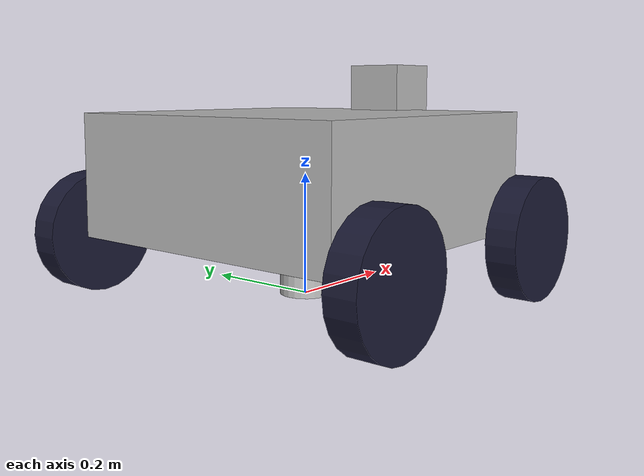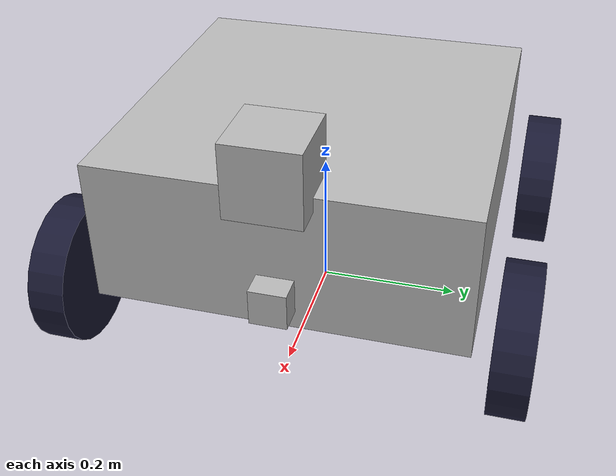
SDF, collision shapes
<?xml version='1.0'?>
<sdf version='1.4'>
    <model name="atom">
        <static>false</static>

        <!-- Make Chassis of Bot -->
        <link name="chassis">
            <pose>0 0 0.2 0 0 0</pose>
            <inertial>
                <mass>15.0</mass>
                <inertia> <!-- inertias are tricky to compute -->
                    <!-- http://gazebosim.org/tutorials?tut=inertia&cat=build_robot -->
                    <ixx>1.535</ixx>       <!-- for a box: ixx = 0.083 * mass * (y*y + z*z) -->
                    <ixy>0.0</ixy>         <!-- for a box: ixy = 0 -->
                    <ixz>0.0</ixz>         <!-- for a box: ixz = 0 -->
                    <iyy>1.535</iyy>       <!-- for a box: iyy = 0.083 * mass * (x*x + z*z) -->
                    <iyz>0.0</iyz>         <!-- for a box: iyz = 0 -->
                    <izz>1.745</izz>       <!-- for a box: izz = 0.083 * mass * (x*x + y*y) -->
                </inertia>
            </inertial>
            <collision name="collision">
                <geometry>
                    <box>
                        <size> 0.5 0.5 0.2 </size>
                    </box>
                </geometry>
            </collision>

            <visual name="visual">
                <geometry>
                    <box>
                        <size> 0.5 0.5 0.2 </size>
                    </box>
                </geometry>

                <material>
                    <script>
                        <uri>model://atom/materials/scripts/repeated.material</uri>
                        <name>Atom</name>
                    </script>
                </material>

            </visual>

        </link>

        <!-- Right Wheel Back -->
        <link name="right_wheel_back">
            <pose> -0.2 0.3 0.1 0 1.5707 1.5707</pose>
            <inertial>
                <mass>5.0</mass>
                <inertia> <!-- inertias are tricky to compute -->
                    <!-- http://gazebosim.org/tutorials?tut=inertia&cat=build_robot -->
                    <ixx>0.1</ixx>
                    <ixy>0.0</ixy>
                    <ixz>0.0</ixz>
                    <iyy>0.1</iyy>
                    <iyz>0.0</iyz>
                    <izz>0.1</izz>
                </inertia>
            </inertial>
            <visual name="visual">
                <geometry>
                    <cylinder>
                        <radius> 0.1 </radius>
                        <length>0.05</length>
                    </cylinder>
                </geometry>
                <material> <!-- Wheel material -->
                    <ambient>0.1 0.1 0.1 1</ambient>
                    <diffuse>0.1 0.1 0.2 1</diffuse>
                    <specular>0 0 0 0</specular>
                    <emissive>0 0 0 1</emissive>
                </material> <!-- End wheel material -->
            </visual>
            <collision name="collision">
                <geometry>
                    <cylinder>
                        <radius> 0.1 </radius>
                        <length>0.05</length>
                    </cylinder>
                </geometry>
            </collision>

        </link>

        <!-- Right Wheel Front -->
        <link name="right_wheel_front">
            <pose> 0.2 0.3 0.1 0 1.5707 1.5707</pose>
            <inertial>
                <mass>5.0</mass>
                <inertia> <!-- inertias are tricky to compute -->
                    <!-- http://gazebosim.org/tutorials?tut=inertia&cat=build_robot -->
                    <ixx>0.1</ixx>
                    <ixy>0.0</ixy>
                    <ixz>0.0</ixz>
                    <iyy>0.1</iyy>
                    <iyz>0.0</iyz>
                    <izz>0.1</izz>
                </inertia>
            </inertial>
            <visual name="visual">
                <geometry>
                    <cylinder>
                        <radius> 0.1 </radius>
                        <length>0.05</length>
                    </cylinder>
                </geometry>
                <material> <!-- Wheel material -->
                    <ambient>0.1 0.1 0.1 1</ambient>
                    <diffuse>0.1 0.1 0.2 1</diffuse>
                    <specular>0 0 0 0</specular>
                    <emissive>0 0 0 1</emissive>
                </material> <!-- End wheel material -->
            </visual>
            <collision name="collision">
                <geometry>
                    <cylinder>
                        <radius> 0.1 </radius>
                        <length>0.05</length>
                    </cylinder>
                </geometry>
            </collision>
        </link>

        <!-- Left Wheel Back -->
        <link name="left_wheel_back">
            <pose> -0.2 -0.3 0.1 0 1.5707 1.5707</pose>
            <inertial>
                <mass>5.0</mass>
                <inertia> <!-- inertias are tricky to compute -->
                    <!-- http://gazebosim.org/tutorials?tut=inertia&cat=build_robot -->
                    <ixx>0.1</ixx>
                    <ixy>0.0</ixy>
                    <ixz>0.0</ixz>
                    <iyy>0.1</iyy>
                    <iyz>0.0</iyz>
                    <izz>0.1</izz>
                </inertia>
            </inertial>
            <visual name="visual">
                <geometry>
                    <cylinder>
                        <radius> 0.1 </radius>
                        <length>0.05</length>
                    </cylinder>
                </geometry>
                <material> <!-- Wheel material -->
                    <ambient>0.1 0.1 0.1 1</ambient>
                    <diffuse>0.1 0.1 0.2 1</diffuse>
                    <specular>0 0 0 0</specular>
                    <emissive>0 0 0 1</emissive>
                </material> <!-- End wheel material -->
            </visual>
            <collision name="collision">
                <geometry>
                    <cylinder>
                        <radius> 0.1 </radius>
                        <length>0.05</length>
                    </cylinder>
                </geometry>
            </collision>
        </link>

        <!-- Left Wheel Front -->
        <link name="left_wheel_front">
            <pose> 0.2 -0.3 0.1 0 1.5707 1.5707</pose>
            <inertial>
                <mass>5.0</mass>
                <inertia> <!-- inertias are tricky to compute -->
                    <!-- http://gazebosim.org/tutorials?tut=inertia&cat=build_robot -->
                    <ixx>0.1</ixx>
                    <ixy>0.0</ixy>
                    <ixz>0.0</ixz>
                    <iyy>0.1</iyy>
                    <iyz>0.0</iyz>
                    <izz>0.1</izz>
                </inertia>
            </inertial>
            <visual name="visual">
                <geometry>
                    <cylinder>
                        <radius> 0.1 </radius>
                        <length>0.05</length>
                    </cylinder>
                </geometry>
                <material> <!-- Wheel material -->
                    <ambient>0.1 0.1 0.1 1</ambient>
                    <diffuse>0.1 0.1 0.2 1</diffuse>
                    <specular>0 0 0 0</specular>
                    <emissive>0 0 0 1</emissive>
                </material> <!-- End wheel material -->
            </visual>
            <collision name="collision">
                <geometry>
                    <cylinder>
                        <radius> 0.1 </radius>
                        <length>0.05</length>
                    </cylinder>
                </geometry>
            </collision>
        </link>

        <!-- Define Joints -->
        <!-- Right Wheel Joint Back-->
        <joint type="revolute" name="right_wheel_hinge_back">
            <pose>0 0 0.03 0 0 0</pose>
            <child>right_wheel_back</child>
            <parent>chassis</parent>
            <axis>
                <xyz>0 1 0</xyz>
            </axis>
        </joint>

        <!-- Right Wheel Joint Front-->
        <joint type="revolute" name="right_wheel_hinge_front">
            <pose>0 0 0.03 0 0 0</pose>
            <child>right_wheel_front</child>
            <parent>chassis</parent>
            <axis>
                <xyz>0 1 0</xyz>
            </axis>
        </joint>

        <!-- Left Wheel Joint Back-->
        <joint type="revolute" name="left_wheel_hinge_back">
            <pose>0 0 -0.03 0 0 0</pose>
            <child>left_wheel_back</child>
            <parent>chassis</parent>
            <axis>
                <xyz>0 1 0</xyz>
            </axis>
        </joint>

        <!-- Left Wheel Joint front-->
        <joint type="revolute" name="left_wheel_hinge_front">
            <pose>0 0 -0.03 0 0 0</pose>
            <child>left_wheel_front</child>
            <parent>chassis</parent>
            <axis>
                <xyz>0 1 0</xyz>
            </axis>
        </joint>

        <!-- Camera -->
        <link name="camera_link">
            <pose>0.26 0 0.15 0 0 0</pose>

            <visual name="visual">
                <geometry>
                    <box>
                        <size>0.05 0.05 0.05</size>
                    </box>
                </geometry>
            </visual>

            <collision name="collision">
                <geometry>
                    <box>
                        <size>0.05 0.05 0.05</size>
                    </box>
                </geometry>
            </collision>

            <sensor type="camera" name="camera1">
                <update_rate>30.0</update_rate>
                <camera name="head">
                    <horizontal_fov>1.3962634</horizontal_fov>
                    <image>
                        <width>800</width>
                        <height>800</height>
                        <format>R8G8B8</format>
                    </image>
                    <clip>
                        <near>0.02</near>
                        <far>300</far>
                    </clip>
                </camera>
                <always_on>1</always_on>
                <visualize>1</visualize>
                <plugin name="camera_controller" filename="libgazebo_ros_camera.so">
                    <alwaysOn>true</alwaysOn>
                    <updateRate>0.0</updateRate>
                    <cameraName>atom/camera</cameraName>
                    <imageTopicName>rgb/image_raw</imageTopicName>
                    <cameraInfoTopicName>rgb/camera_info</cameraInfoTopicName>
                    <frameName>camera_link</frameName>
                    <hackBaseline>0.07</hackBaseline>
                    <distortionK1>0.0</distortionK1>
                    <distortionK2>0.0</distortionK2>
                    <distortionK3>0.0</distortionK3>
                    <distortionT1>0.0</distortionT1>
                    <distortionT2>0.0</distortionT2>
                    <publishTF>true</publishTF>
                </plugin>
            </sensor>
        </link>

        <!-- Camera Joint -->
        <joint type="fixed" name="camera_joint" >
            <parent>chassis</parent>
            <child>camera_link</child>
            <axis>
                <xyz>0 1 0</xyz>
            </axis>
        </joint>

        <!-- Project center to the ground -->
        <link name="robot_footprint"></link>

        <!-- Plugin -->
        <plugin name="skid_steer_drive_controller" filename="libgazebo_ros_skid_steer_drive.so">
            <updateRate>100.0</updateRate>
            <robotNamespace>/</robotNamespace>
            <leftFrontJoint>left_wheel_hinge_front</leftFrontJoint>
            <rightFrontJoint>right_wheel_hinge_front</rightFrontJoint>
            <leftRearJoint>left_wheel_hinge_back</leftRearJoint>
            <rightRearJoint>right_wheel_hinge_back</rightRearJoint>
            <wheelSeparation>0.4</wheelSeparation>
            <wheelDiameter>0.2</wheelDiameter>
            <robotBaseFrame>robot_footprint</robotBaseFrame>
            <torque>10</torque>
            <topicName>cmd_vel</topicName>
            <odometryTopic>odom</odometryTopic>
            <odometryFrame>odom</odometryFrame>
            <commandTopic>cmd_vel</commandTopic>
            <topic_name_twist>cmd_vel</topic_name_twist>
            <topic_name_odometry>odom</topic_name_odometry>
            <topic_name_joint>joint</topic_name_joint>
            <broadcastTF>true</broadcastTF>
            <covariance_x>0.0001</covariance_x>
            <covariance_y>0.0001</covariance_y>
            <covariance_yaw>0.01</covariance_yaw>

        </plugin>

        <!-- LiDAR -->
        <link name="hokuyo">
            <pose>0.24 0 0.33 0 0 0</pose>
            <inertial>
                <mass>1e-5</mass>
                <inertia> <!-- inertias are tricky to compute -->
                    <!-- http://gazebosim.org/tutorials?tut=inertia&cat=build_robot -->
                    <ixx>1e-6</ixx>
                    <ixy>0.0</ixy>
                    <ixz>0.0</ixz>
                    <iyy>1e-6</iyy>
                    <iyz>0.0</iyz>
                    <izz>1e-6</izz>
                </inertia>
            </inertial>

            <visual name="visual">
                <geometry>
                    <mesh>
                        <uri> model://atom/meshes/hokuyo.dae</uri>
                    </mesh>
                </geometry>
            </visual>

            <collision name="collision">
                <geometry>
                    <box>
                        <size>0.1 0.1 0.1</size>
                    </box>
                </geometry>
            </collision>

            <sensor type="ray" name="head_hokuyo_sensor">
                <pose>0 0 0 0 0 0</pose>
                <visualize>false</visualize>
                <update_rate>40</update_rate>
                <ray>
                    <scan>
                        <horizontal>
                            <samples>720</samples>
                            <resolution>1</resolution>
                            <min_angle>-1.570796</min_angle>
                            <max_angle>1.570796</max_angle>
                        </horizontal>
                    </scan>

                    <range>
                        <min>0.10</min>
                        <max>30.0</max>
                        <resolution>0.01</resolution>
                    </range>

                    <noise>
                        <type>gaussian</type>
                        <mean>0.0</mean>
                        <stddev>0.01</stddev>
                    </noise>

                </ray>
                <plugin name="gazebo_ros_head_hokuyo_controller" filename="libgazebo_ros_laser.so">
                    <topicName>/scan</topicName>
                    <frameName>hokuyo</frameName>
                </plugin>
            </sensor>
        </link>

        <joint name="hokuyo_joint" type="fixed">
            <pose></pose>
            <parent>chassis</parent>
            <child>hokuyo</child>
            <axis>
                <xyz>0 1 0</xyz>
            </axis>
        </joint>

    </model>
<model name="velodyne_hdl-32">
  <!-- Give the base link a unique name -->
  <link name="base">

    <!-- Offset the base by half the lenght of the cylinder -->
    <pose>0 0 0.029335 0 0 0</pose>
    <collision name="base_collision">
      <geometry>
        <cylinder>
          <!-- Radius and length provided by Velodyne -->
          <radius>.04267</radius>
          <length>.05867</length>
        </cylinder>
      </geometry>
    </collision>

    <!-- The visual is mostly a copy of the collision -->
    <visual name="base_visual">
      <geometry>
        <cylinder>
          <radius>.04267</radius>
          <length>.05867</length>
        </cylinder>
      </geometry>
    </visual>
  </link>

  <!-- Give the base link a unique name -->
  <link name="top">

    <!-- Vertically offset the top cylinder by the length of the bottom
        cylinder and half the length of this cylinder. -->
    <pose>0 0 0.095455 0 0 0</pose>
    <collision name="top_collision">
      <geometry>
        <cylinder>
          <!-- Radius and length provided by Velodyne -->
          <radius>0.04267</radius>
          <length>0.07357</length>
        </cylinder>
      </geometry>
    </collision>

    <!-- The visual is mostly a copy of the collision -->
    <visual name="top_visual">
      <geometry>
        <cylinder>
          <radius>0.04267</radius>
          <length>0.07357</length>
        </cylinder>
      </geometry>
    </visual>
  </link>
</model>

</sdf>
